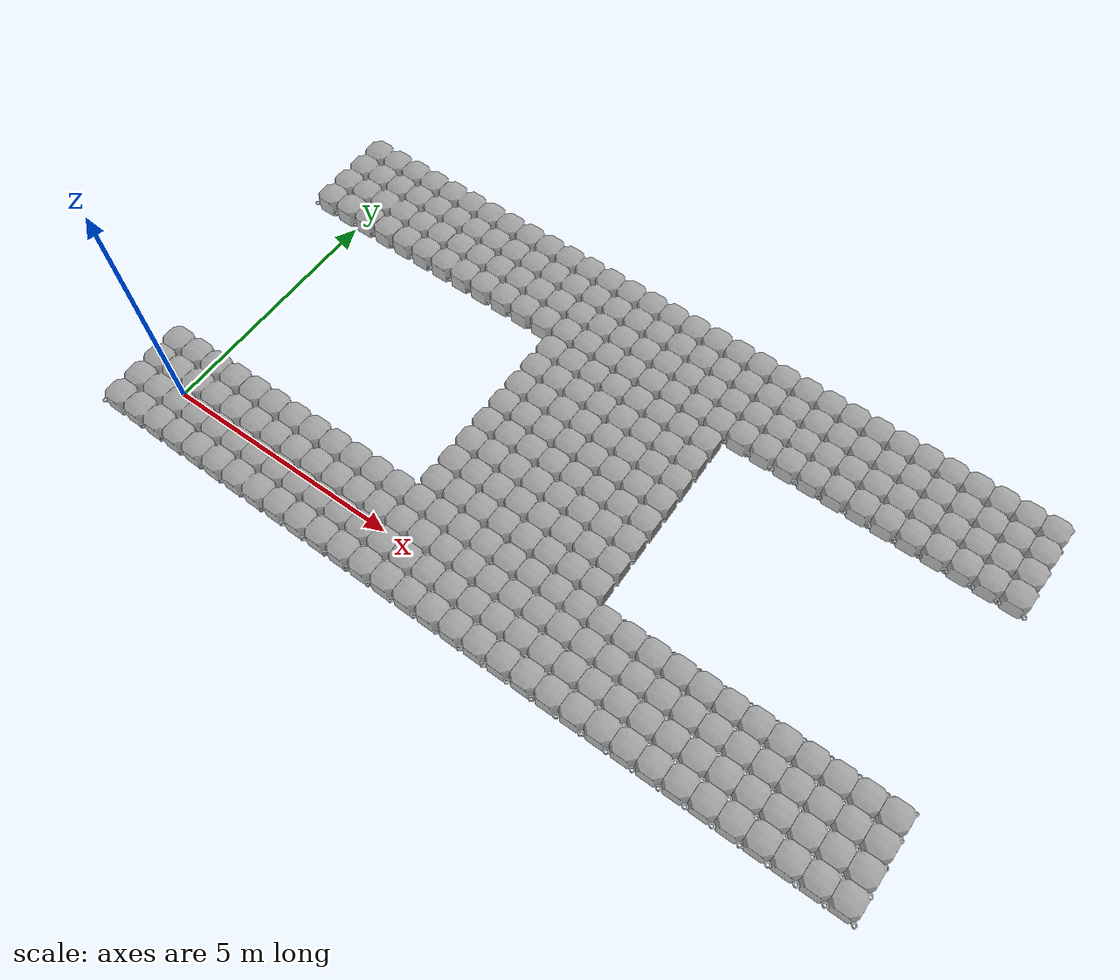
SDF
<?xml version="1.0" ?>
<sdf version="1.6">

  <!-- Important: This file is generated. DO NOT EDIT! -->

  <model name="robotx_dock_2018_base_dynamic">

    <!--
      This is how this dock should look like:

          X  X          X  X          X  X          XXXX          XXXX          X  X          X  X          X  X
    -->

    <!-- Row 0 -->
    <include>
      <name>dock_block_0_0</name>
      <pose>0 0 0.25 0 0 0</pose>
        <uri>model://dock_block_4x4_dynamic</uri>
    </include>
    <include>
      <name>dock_block_0_3</name>
      <pose>0 6 0.25 0 0 0</pose>
        <uri>model://dock_block_4x4_dynamic</uri>
    </include>

    <!-- Row 1 -->
    <include>
      <name>dock_block_1_0</name>
      <pose>2 0 0.25 0 0 0</pose>
        <uri>model://dock_block_4x4_dynamic</uri>
    </include>
    <include>
      <name>dock_block_1_3</name>
      <pose>2 6 0.25 0 0 0</pose>
        <uri>model://dock_block_4x4_dynamic</uri>
    </include>

    <!-- Row 2 -->
    <include>
      <name>dock_block_2_0</name>
      <pose>4 0 0.25 0 0 0</pose>
        <uri>model://dock_block_4x4_dynamic</uri>
    </include>
    <include>
      <name>dock_block_2_3</name>
      <pose>4 6 0.25 0 0 0</pose>
        <uri>model://dock_block_4x4_dynamic</uri>
    </include>

    <!-- Row 3 -->
    <include>
      <name>dock_block_3_0</name>
      <pose>6 0 0.25 0 0 0</pose>
        <uri>model://dock_block_4x4_dynamic</uri>
    </include>
    <include>
      <name>dock_block_3_1</name>
      <pose>6 2 0.25 0 0 0</pose>
        <uri>model://dock_block_4x4_dynamic</uri>
    </include>
    <include>
      <name>dock_block_3_2</name>
      <pose>6 4 0.25 0 0 0</pose>
        <uri>model://dock_block_4x4_dynamic</uri>
    </include>
    <include>
      <name>dock_block_3_3</name>
      <pose>6 6 0.25 0 0 0</pose>
        <uri>model://dock_block_4x4_dynamic</uri>
    </include>

    <!-- Row 4 -->
    <include>
      <name>dock_block_4_0</name>
      <pose>8 0 0.25 0 0 0</pose>
        <uri>model://dock_block_4x4_dynamic</uri>
    </include>
    <include>
      <name>dock_block_4_1</name>
      <pose>8 2 0.25 0 0 0</pose>
        <uri>model://dock_block_4x4_dynamic</uri>
    </include>
    <include>
      <name>dock_block_4_2</name>
      <pose>8 4 0.25 0 0 0</pose>
        <uri>model://dock_block_4x4_dynamic</uri>
    </include>
    <include>
      <name>dock_block_4_3</name>
      <pose>8 6 0.25 0 0 0</pose>
        <uri>model://dock_block_4x4_dynamic</uri>
    </include>

    <!-- Row 5 -->
    <include>
      <name>dock_block_5_0</name>
      <pose>10 0 0.25 0 0 0</pose>
        <uri>model://dock_block_4x4_dynamic</uri>
    </include>
    <include>
      <name>dock_block_5_3</name>
      <pose>10 6 0.25 0 0 0</pose>
        <uri>model://dock_block_4x4_dynamic</uri>
    </include>

    <!-- Row 6 -->
    <include>
      <name>dock_block_6_0</name>
      <pose>12 0 0.25 0 0 0</pose>
        <uri>model://dock_block_4x4_dynamic</uri>
    </include>
    <include>
      <name>dock_block_6_3</name>
      <pose>12 6 0.25 0 0 0</pose>
        <uri>model://dock_block_4x4_dynamic</uri>
    </include>

    <!-- Row 7 -->
    <include>
      <name>dock_block_7_0</name>
      <pose>14 0 0.25 0 0 0</pose>
        <uri>model://dock_block_4x4_dynamic</uri>
    </include>
    <include>
      <name>dock_block_7_3</name>
      <pose>14 6 0.25 0 0 0</pose>
        <uri>model://dock_block_4x4_dynamic</uri>
    </include>

    <!-- Add joints across rows -->

    <!-- Row 0 -->

    <!-- Row 1 -->

    <!-- Row 2 -->

    <!-- Row 3 -->
    <joint name="3_0_to_3_1" type="revolute">
      <pose> 0  1.0 0 0 0 0</pose>
      <parent>dock_block_3_1::link</parent>
      <child>dock_block_3_0::link</child>
      <axis>
        <limit>
          <lower>-0.1</lower>
          <upper>0.1</upper>
        </limit>
        <xyz>1 0 0</xyz>
      </axis>
    </joint>
    <joint name="3_1_to_3_2" type="revolute">
      <pose> 0  1.0 0 0 0 0</pose>
      <parent>dock_block_3_2::link</parent>
      <child>dock_block_3_1::link</child>
      <axis>
        <limit>
          <lower>-0.1</lower>
          <upper>0.1</upper>
        </limit>
        <xyz>1 0 0</xyz>
      </axis>
    </joint>
    <joint name="3_2_to_3_3" type="revolute">
      <pose> 0  1.0 0 0 0 0</pose>
      <parent>dock_block_3_3::link</parent>
      <child>dock_block_3_2::link</child>
      <axis>
        <limit>
          <lower>-0.1</lower>
          <upper>0.1</upper>
        </limit>
        <xyz>1 0 0</xyz>
      </axis>
    </joint>

    <!-- Row 4 -->
    <joint name="4_0_to_4_1" type="revolute">
      <pose> 0  1.0 0 0 0 0</pose>
      <parent>dock_block_4_1::link</parent>
      <child>dock_block_4_0::link</child>
      <axis>
        <limit>
          <lower>-0.1</lower>
          <upper>0.1</upper>
        </limit>
        <xyz>1 0 0</xyz>
      </axis>
    </joint>
    <joint name="4_1_to_4_2" type="revolute">
      <pose> 0  1.0 0 0 0 0</pose>
      <parent>dock_block_4_2::link</parent>
      <child>dock_block_4_1::link</child>
      <axis>
        <limit>
          <lower>-0.1</lower>
          <upper>0.1</upper>
        </limit>
        <xyz>1 0 0</xyz>
      </axis>
    </joint>
    <joint name="4_2_to_4_3" type="revolute">
      <pose> 0  1.0 0 0 0 0</pose>
      <parent>dock_block_4_3::link</parent>
      <child>dock_block_4_2::link</child>
      <axis>
        <limit>
          <lower>-0.1</lower>
          <upper>0.1</upper>
        </limit>
        <xyz>1 0 0</xyz>
      </axis>
    </joint>

    <!-- Row 5 -->

    <!-- Row 6 -->

    <!-- Row 7 -->

    <!-- Add joints across columns -->

    <!-- Column 0 -->
    <joint name="1_0_to_0_0" type="revolute">
      <pose> 1.0 0 0 0 0 0</pose>
      <parent>dock_block_1_0::link</parent>
      <child>dock_block_0_0::link</child>
      <axis>
        <limit>
          <lower>-0.1</lower>
          <upper>0.1</upper>
        </limit>
        <xyz>0 1 0</xyz>
      </axis>
    </joint>
    <joint name="2_0_to_1_0" type="revolute">
      <pose> 1.0 0 0 0 0 0</pose>
      <parent>dock_block_2_0::link</parent>
      <child>dock_block_1_0::link</child>
      <axis>
        <limit>
          <lower>-0.1</lower>
          <upper>0.1</upper>
        </limit>
        <xyz>0 1 0</xyz>
      </axis>
    </joint>
    <joint name="3_0_to_2_0" type="revolute">
      <pose> 1.0 0 0 0 0 0</pose>
      <parent>dock_block_3_0::link</parent>
      <child>dock_block_2_0::link</child>
      <axis>
        <limit>
          <lower>-0.1</lower>
          <upper>0.1</upper>
        </limit>
        <xyz>0 1 0</xyz>
      </axis>
    </joint>
    <joint name="4_0_to_3_0" type="revolute">
      <pose> 1.0 0 0 0 0 0</pose>
      <parent>dock_block_4_0::link</parent>
      <child>dock_block_3_0::link</child>
      <axis>
        <limit>
          <lower>-0.1</lower>
          <upper>0.1</upper>
        </limit>
        <xyz>0 1 0</xyz>
      </axis>
    </joint>
    <joint name="5_0_to_4_0" type="revolute">
      <pose> 1.0 0 0 0 0 0</pose>
      <parent>dock_block_5_0::link</parent>
      <child>dock_block_4_0::link</child>
      <axis>
        <limit>
          <lower>-0.1</lower>
          <upper>0.1</upper>
        </limit>
        <xyz>0 1 0</xyz>
      </axis>
    </joint>
    <joint name="6_0_to_5_0" type="revolute">
      <pose> 1.0 0 0 0 0 0</pose>
      <parent>dock_block_6_0::link</parent>
      <child>dock_block_5_0::link</child>
      <axis>
        <limit>
          <lower>-0.1</lower>
          <upper>0.1</upper>
        </limit>
        <xyz>0 1 0</xyz>
      </axis>
    </joint>
    <joint name="7_0_to_6_0" type="revolute">
      <pose> 1.0 0 0 0 0 0</pose>
      <parent>dock_block_7_0::link</parent>
      <child>dock_block_6_0::link</child>
      <axis>
        <limit>
          <lower>-0.1</lower>
          <upper>0.1</upper>
        </limit>
        <xyz>0 1 0</xyz>
      </axis>
    </joint>

    <!-- Column 1 -->
    <joint name="4_1_to_3_1" type="revolute">
      <pose> 1.0 0 0 0 0 0</pose>
      <parent>dock_block_4_1::link</parent>
      <child>dock_block_3_1::link</child>
      <axis>
        <limit>
          <lower>-0.1</lower>
          <upper>0.1</upper>
        </limit>
        <xyz>0 1 0</xyz>
      </axis>
    </joint>

    <!-- Column 2 -->
    <joint name="4_2_to_3_2" type="revolute">
      <pose> 1.0 0 0 0 0 0</pose>
      <parent>dock_block_4_2::link</parent>
      <child>dock_block_3_2::link</child>
      <axis>
        <limit>
          <lower>-0.1</lower>
          <upper>0.1</upper>
        </limit>
        <xyz>0 1 0</xyz>
      </axis>
    </joint>

    <!-- Column 3 -->
    <joint name="1_3_to_0_3" type="revolute">
      <pose> 1.0 0 0 0 0 0</pose>
      <parent>dock_block_1_3::link</parent>
      <child>dock_block_0_3::link</child>
      <axis>
        <limit>
          <lower>-0.1</lower>
          <upper>0.1</upper>
        </limit>
        <xyz>0 1 0</xyz>
      </axis>
    </joint>
    <joint name="2_3_to_1_3" type="revolute">
      <pose> 1.0 0 0 0 0 0</pose>
      <parent>dock_block_2_3::link</parent>
      <child>dock_block_1_3::link</child>
      <axis>
        <limit>
          <lower>-0.1</lower>
          <upper>0.1</upper>
        </limit>
        <xyz>0 1 0</xyz>
      </axis>
    </joint>
    <joint name="3_3_to_2_3" type="revolute">
      <pose> 1.0 0 0 0 0 0</pose>
      <parent>dock_block_3_3::link</parent>
      <child>dock_block_2_3::link</child>
      <axis>
        <limit>
          <lower>-0.1</lower>
          <upper>0.1</upper>
        </limit>
        <xyz>0 1 0</xyz>
      </axis>
    </joint>
    <joint name="4_3_to_3_3" type="revolute">
      <pose> 1.0 0 0 0 0 0</pose>
      <parent>dock_block_4_3::link</parent>
      <child>dock_block_3_3::link</child>
      <axis>
        <limit>
          <lower>-0.1</lower>
          <upper>0.1</upper>
        </limit>
        <xyz>0 1 0</xyz>
      </axis>
    </joint>
    <joint name="5_3_to_4_3" type="revolute">
      <pose> 1.0 0 0 0 0 0</pose>
      <parent>dock_block_5_3::link</parent>
      <child>dock_block_4_3::link</child>
      <axis>
        <limit>
          <lower>-0.1</lower>
          <upper>0.1</upper>
        </limit>
        <xyz>0 1 0</xyz>
      </axis>
    </joint>
    <joint name="6_3_to_5_3" type="revolute">
      <pose> 1.0 0 0 0 0 0</pose>
      <parent>dock_block_6_3::link</parent>
      <child>dock_block_5_3::link</child>
      <axis>
        <limit>
          <lower>-0.1</lower>
          <upper>0.1</upper>
        </limit>
        <xyz>0 1 0</xyz>
      </axis>
    </joint>
    <joint name="7_3_to_6_3" type="revolute">
      <pose> 1.0 0 0 0 0 0</pose>
      <parent>dock_block_7_3::link</parent>
      <child>dock_block_6_3::link</child>
      <axis>
        <limit>
          <lower>-0.1</lower>
          <upper>0.1</upper>
        </limit>
        <xyz>0 1 0</xyz>
      </axis>
    </joint>

  </model>
</sdf>

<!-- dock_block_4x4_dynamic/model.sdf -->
<sdf version="1.5">
  <model name="dock_block_4x4">
    <static>false</static>
    <link name="link">
      <velocity_decay>
        <linear>0.001</linear>
        <angular>0.001</angular>
      </velocity_decay>
       <inertial>
        <pose>0 0 0 0 0 0</pose>
        <mass>160</mass>
        <inertia>
          <ixx>55.467</ixx>
          <ixy>0</ixy>
          <ixz>0</ixz>
          <iyy>55.467</iyy>
          <iyz>0</iyz>
          <izz>106.67</izz>
        </inertia>
      </inertial>
      <collision name="collision">
        <pose>0 0 0 0 0 0</pose>
        <geometry>
          <box>
            <size>2 2 0.4</size>
          </box>
        </geometry>
      </collision>
      <visual name="visual">
        <pose>-0.25 0.25 0.2 0 0 0 </pose>
        <geometry>
          <mesh>
            <uri>file://dock_block_4x4/mesh/dock_block_4x4.dae</uri>
          </mesh>
        </geometry>
      </visual>
    </link>
    <plugin name="BuoyancyPlugin" filename="libbuoyancy_gazebo_plugin.so">
      <wave_model>ocean_waves</wave_model>
      <fluid_density>1000</fluid_density>
      <fluid_level>0</fluid_level>
      <linear_drag>1000.0</linear_drag>
      <angular_drag>200.0</angular_drag>
      <buoyancy name="buoyancy_base">
        <link_name>link</link_name>
      	<pose>0 0 0.35 0 0 0</pose>
        <geometry>
					<sphere>
            <radius>0.72557</radius>
          </sphere>
				</geometry>
      </buoyancy>
    </plugin>
  </model>
</sdf>
